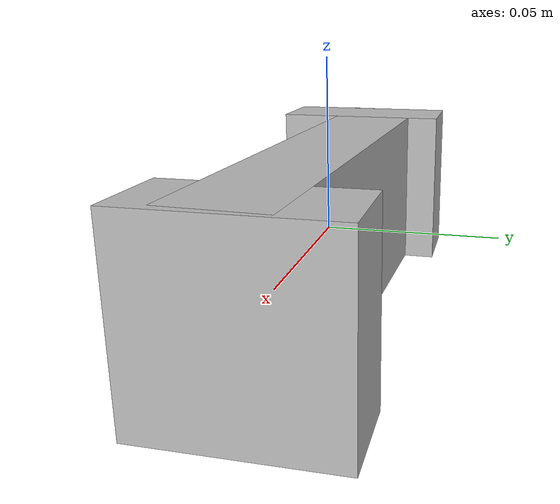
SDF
<?xml version="1.0"?>
<sdf version="1.7">
  <model name="I_shape_texture">
    <link name="I_shape_texture">
      <inertial>
        <pose>-0.000557 -0.000109 0.000200 0 0 0</pose>
        <mass>0.05</mass>
        <inertia>
          <ixx>1.79517926e-05</ixx>
          <iyy>0.000153826714</iyy>
          <izz>0.000149267166</izz>
          <ixy>1.22174835e-06</ixy>
          <ixz>5.57457213e-09</ixz>
          <iyz>1.08801956e-09</iyz>
        </inertia>
      </inertial>
      <visual name="box_0">
        <pose>0.000000 0.000500 0.000200 0 0 -0.045000</pose>
        <geometry>
          <box><size>0.152000 0.026000 0.051970</size></box>
        </geometry>
        <material>
          <diffuse>0.75 0.75 0.75 1</diffuse>
        </material>
      </visual>
      <collision name="box_0_volume">
        <pose>0.000000 0.000500 0.000200 0 0 -0.045000</pose>
        <geometry>
          <box><size>0.152000 0.026000 0.051970</size></box>
        </geometry>
        <drake:proximity_properties>
          <drake:compliant_hydroelastic/>
          <drake:hydroelastic_modulus> 3.0e7 </drake:hydroelastic_modulus>
          <drake:mesh_resolution_hint> 0.02 </drake:mesh_resolution_hint>
          <drake:hunt_crossley_dissipation>10</drake:hunt_crossley_dissipation>
          <drake:mu_dynamic>0.3</drake:mu_dynamic>
        </drake:proximity_properties>
      </collision>
      <visual name="box_1">
        <pose>-0.064000 -0.002000 0.000200 0 0 0.000000</pose>
        <geometry>
          <box><size>0.024000 0.056000 0.051970</size></box>
        </geometry>
        <material>
          <diffuse>0.75 0.75 0.75 1</diffuse>
        </material>
      </visual>
      <collision name="box_1_volume">
        <pose>-0.064000 -0.002000 0.000200 0 0 0.000000</pose>
        <geometry>
          <box><size>0.024000 0.056000 0.051970</size></box>
        </geometry>
        <drake:proximity_properties>
          <drake:compliant_hydroelastic/>
          <drake:hydroelastic_modulus> 3.0e7 </drake:hydroelastic_modulus>
          <drake:mesh_resolution_hint> 0.02 </drake:mesh_resolution_hint>
          <drake:hunt_crossley_dissipation>10</drake:hunt_crossley_dissipation>
          <drake:mu_dynamic>0.3</drake:mu_dynamic>
        </drake:proximity_properties>
      </collision>
      <visual name="box_2">
        <pose>0.066000 0.000000 0.000200 0 0 0.000000</pose>
        <geometry>
          <box><size>0.024000 0.052000 0.051970</size></box>
        </geometry>
        <material>
          <diffuse>0.75 0.75 0.75 1</diffuse>
        </material>
      </visual>
      <collision name="box_2_volume">
        <pose>0.066000 0.000000 0.000200 0 0 0.000000</pose>
        <geometry>
          <box><size>0.024000 0.052000 0.051970</size></box>
        </geometry>
        <drake:proximity_properties>
          <drake:compliant_hydroelastic/>
          <drake:hydroelastic_modulus> 3.0e7 </drake:hydroelastic_modulus>
          <drake:mesh_resolution_hint> 0.02 </drake:mesh_resolution_hint>
          <drake:hunt_crossley_dissipation>10</drake:hunt_crossley_dissipation>
          <drake:mu_dynamic>0.3</drake:mu_dynamic>
        </drake:proximity_properties>
      </collision>
    </link>
  </model>
</sdf>
